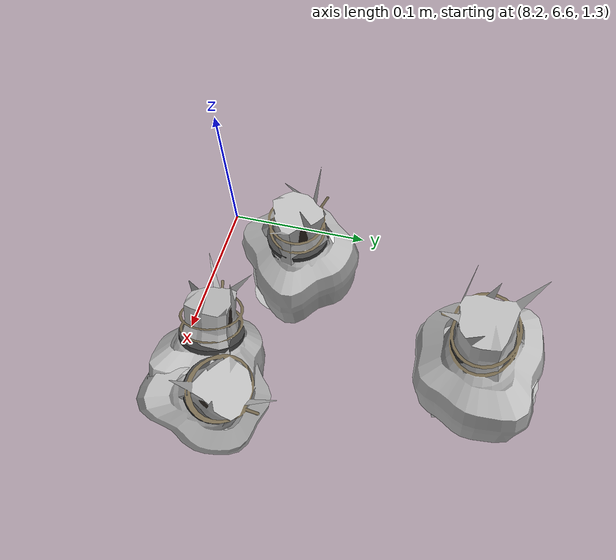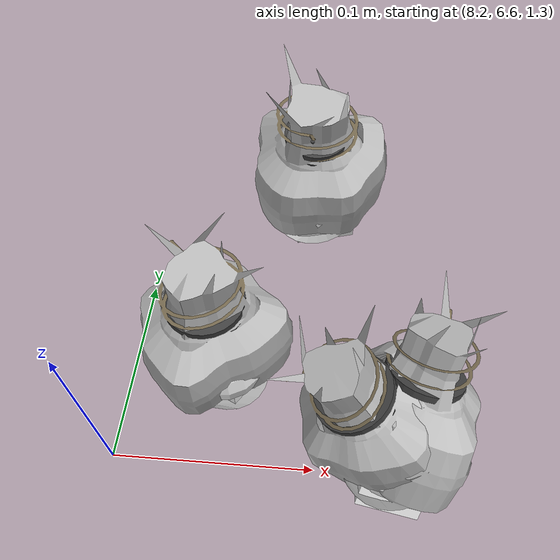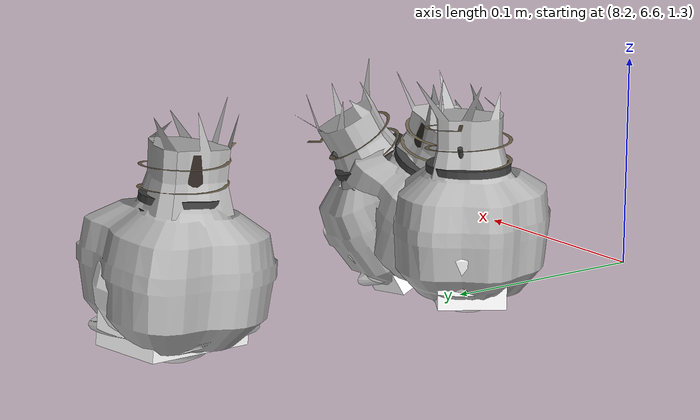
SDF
<sdf version="1.11">
 <world name="peach_orchard">
  <model name="ground">
   <static>true</static>
   <link name="link">
    <visual name="soil">
     <geometry><plane><normal>0 0 1</normal><size>32 22</size></plane></geometry>
     <material>
      <ambient>1 1 1 1</ambient>
      <diffuse>1 1 1 1</diffuse>
      <specular>0.1 0.1 0.1 1</specular>
      <pbr>
       <metal>
        <albedo_map>textures/soil_albedo.png</albedo_map>
        <normal_map type="tangent">textures/soil_normal.png</normal_map>
        <roughness>0.95</roughness>
        <metalness>0</metalness>
       </metal>
      </pbr>
     </material>
    </visual>
    <collision name="c_soil">
     <geometry><plane><normal>0 0 1</normal><size>32 22</size></plane></geometry>
    </collision>
   </link>
  </model>
  <model name="peach_tree_r4_t6_01">
   <pose>8.34464 6.62677 1.27423 0 0.434602 3.12571</pose>
   <static>true</static>
   <link name="bag">
    <visual name="bag_mesh">
     <pose>0 0 0.0449156 0 0 0</pose>
     <geometry>
      <mesh><uri>model://peach_sim/meshes/bagged_peach.glb</uri><scale>0.943923 1.02547 1.02081</scale></mesh>
     </geometry>
    </visual>
    <visual name="body">
     <pose>0 0 0.0269156 0 0 0</pose>
     <geometry><ellipsoid><radii>0.0353971 0.0266623 0.0290688</radii></ellipsoid></geometry>
     <material>
      <ambient>1 1 1 1</ambient>
      <diffuse>1 1 1 1</diffuse>
      <specular>0.1 0.1 0.1 1</specular>
      <pbr>
       <metal>
        <albedo_map>textures/paper_bag_albedo.png</albedo_map>
        <normal_map type="tangent">textures/paper_bag_normal.png</normal_map>
        <roughness>0.72</roughness>
        <metalness>0</metalness>
       </metal>
      </pbr>
     </material>
    </visual>
    <visual name="bottom_fold">
     <pose>0 0 0.012 0 0 0.35</pose>
     <geometry><box><size>0.0548655 0.0306616 0.022</size></box></geometry>
     <material>
      <ambient>1 1 1 1</ambient>
      <diffuse>1 1 1 1</diffuse>
      <specular>0.1 0.1 0.1 1</specular>
      <pbr>
       <metal>
        <albedo_map>textures/paper_bag_albedo.png</albedo_map>
        <normal_map type="tangent">textures/paper_bag_normal.png</normal_map>
        <roughness>0.8</roughness>
        <metalness>0</metalness>
       </metal>
      </pbr>
     </material>
    </visual>
    <visual name="fruit">
     <pose>0 0 0.0210609 0 0 0</pose>
     <geometry><sphere><radius>0.0281434</radius></sphere></geometry>
     <material>
      <ambient>1 1 1 1</ambient>
      <diffuse>1 1 1 1</diffuse>
      <specular>0.1 0.1 0.1 1</specular>
      <pbr>
       <metal>
        <albedo_map>textures/fruit_skin_albedo.png</albedo_map>
        <normal_map type="tangent">textures/fruit_skin_normal.png</normal_map>
        <roughness>0.55</roughness>
        <metalness>0</metalness>
       </metal>
      </pbr>
     </material>
    </visual>
    <visual name="neck">
     <pose>0 0 0.0628311 0 0 0</pose>
     <geometry><cylinder><radius>0.013</radius><length>0.018</length></cylinder></geometry>
     <material>
      <ambient>1 1 1 1</ambient>
      <diffuse>1 1 1 1</diffuse>
      <specular>0.1 0.1 0.1 1</specular>
      <pbr>
       <metal>
        <albedo_map>textures/paper_bag_albedo.png</albedo_map>
        <normal_map type="tangent">textures/paper_bag_normal.png</normal_map>
        <roughness>0.75</roughness>
        <metalness>0</metalness>
       </metal>
      </pbr>
     </material>
    </visual>
    <visual name="gather">
     <pose>0 0 0.0438311 0 0 0</pose>
     <geometry><cylinder><radius>0.019</radius><length>0.02</length></cylinder></geometry>
     <material>
      <ambient>1 1 1 1</ambient>
      <diffuse>1 1 1 1</diffuse>
      <specular>0.1 0.1 0.1 1</specular>
      <pbr>
       <metal>
        <albedo_map>textures/paper_bag_albedo.png</albedo_map>
        <normal_map type="tangent">textures/paper_bag_normal.png</normal_map>
        <roughness>0.8</roughness>
        <metalness>0</metalness>
       </metal>
      </pbr>
     </material>
    </visual>
    <visual name="inner_paper">
     <pose>0 0 0.0678311 0 0 0</pose>
     <geometry><cylinder><radius>0.01</radius><length>0.008</length></cylinder></geometry>
     <material>
      <ambient>0.180392 0.14902 0.133333 1</ambient>
      <diffuse>0.180392 0.14902 0.133333 1</diffuse>
      <specular>0.1 0.1 0.1 1</specular>
     </material>
    </visual>
    <visual name="wire_0">
     <pose>0 0 0.0578311 0 0 0</pose>
     <geometry><cylinder><radius>0.0205</radius><length>0.0035</length></cylinder></geometry>
     <material>
      <ambient>0.25 0.25 0.25 1</ambient>
      <diffuse>0.25 0.25 0.25 1</diffuse>
      <specular>0.1 0.1 0.1 1</specular>
     </material>
    </visual>
    <visual name="wire_1">
     <pose>0 0 0.0648311 0 0 0</pose>
     <geometry><cylinder><radius>0.0205</radius><length>0.0035</length></cylinder></geometry>
     <material>
      <ambient>0.25 0.25 0.25 1</ambient>
      <diffuse>0.25 0.25 0.25 1</diffuse>
      <specular>0.1 0.1 0.1 1</specular>
     </material>
    </visual>
    <visual name="wire_tail">
     <pose>0.01 0 0.0658311 0 0.521618 0</pose>
     <geometry><cylinder><radius>0.0012</radius><length>0.026</length></cylinder></geometry>
     <material>
      <ambient>0.25 0.25 0.25 1</ambient>
      <diffuse>0.25 0.25 0.25 1</diffuse>
      <specular>0.1 0.1 0.1 1</specular>
     </material>
    </visual>
    <collision name="c_body">
     <pose>0 0 0.0269156 0 0 0</pose>
     <geometry><cylinder><radius>0.0353971</radius><length>0.0538311</length></cylinder></geometry>
    </collision>
   </link>
  </model>
  <model name="peach_tree_r4_t6_02">
   <pose>8.33831 6.61272 1.27 0 0.501686 1.13346</pose>
   <static>true</static>
   <link name="bag">
    <visual name="bag_mesh">
     <pose>0 0 0.0464203 0 0 0</pose>
     <geometry>
      <mesh><uri>model://peach_sim/meshes/bagged_peach.glb</uri><scale>0.992701 1.08637 1.05501</scale></mesh>
     </geometry>
    </visual>
    <visual name="body">
     <pose>0 0 0.0284203 0 0 0</pose>
     <geometry><ellipsoid><radii>0.0372263 0.0282457 0.0306939</radii></ellipsoid></geometry>
     <material>
      <ambient>1 1 1 1</ambient>
      <diffuse>1 1 1 1</diffuse>
      <specular>0.1 0.1 0.1 1</specular>
      <pbr>
       <metal>
        <albedo_map>textures/paper_bag_albedo.png</albedo_map>
        <normal_map type="tangent">textures/paper_bag_normal.png</normal_map>
        <roughness>0.72</roughness>
        <metalness>0</metalness>
       </metal>
      </pbr>
     </material>
    </visual>
    <visual name="bottom_fold">
     <pose>0 0 0.012 0 0 0.35</pose>
     <geometry><box><size>0.0577008 0.0324825 0.022</size></box></geometry>
     <material>
      <ambient>1 1 1 1</ambient>
      <diffuse>1 1 1 1</diffuse>
      <specular>0.1 0.1 0.1 1</specular>
      <pbr>
       <metal>
        <albedo_map>textures/paper_bag_albedo.png</albedo_map>
        <normal_map type="tangent">textures/paper_bag_normal.png</normal_map>
        <roughness>0.8</roughness>
        <metalness>0</metalness>
       </metal>
      </pbr>
     </material>
    </visual>
    <visual name="fruit">
     <pose>0 0 0.0205224 0 0 0</pose>
     <geometry><sphere><radius>0.0275833</radius></sphere></geometry>
     <material>
      <ambient>1 1 1 1</ambient>
      <diffuse>1 1 1 1</diffuse>
      <specular>0.1 0.1 0.1 1</specular>
      <pbr>
       <metal>
        <albedo_map>textures/fruit_skin_albedo.png</albedo_map>
        <normal_map type="tangent">textures/fruit_skin_normal.png</normal_map>
        <roughness>0.55</roughness>
        <metalness>0</metalness>
       </metal>
      </pbr>
     </material>
    </visual>
    <visual name="neck">
     <pose>0 0 0.0658405 0 0 0</pose>
     <geometry><cylinder><radius>0.013</radius><length>0.018</length></cylinder></geometry>
     <material>
      <ambient>1 1 1 1</ambient>
      <diffuse>1 1 1 1</diffuse>
      <specular>0.1 0.1 0.1 1</specular>
      <pbr>
       <metal>
        <albedo_map>textures/paper_bag_albedo.png</albedo_map>
        <normal_map type="tangent">textures/paper_bag_normal.png</normal_map>
        <roughness>0.75</roughness>
        <metalness>0</metalness>
       </metal>
      </pbr>
     </material>
    </visual>
    <visual name="gather">
     <pose>0 0 0.0468405 0 0 0</pose>
     <geometry><cylinder><radius>0.019</radius><length>0.02</length></cylinder></geometry>
     <material>
      <ambient>1 1 1 1</ambient>
      <diffuse>1 1 1 1</diffuse>
      <specular>0.1 0.1 0.1 1</specular>
      <pbr>
       <metal>
        <albedo_map>textures/paper_bag_albedo.png</albedo_map>
        <normal_map type="tangent">textures/paper_bag_normal.png</normal_map>
        <roughness>0.8</roughness>
        <metalness>0</metalness>
       </metal>
      </pbr>
     </material>
    </visual>
    <visual name="inner_paper">
     <pose>0 0 0.0708405 0 0 0</pose>
     <geometry><cylinder><radius>0.01</radius><length>0.008</length></cylinder></geometry>
     <material>
      <ambient>0.180392 0.14902 0.133333 1</ambient>
      <diffuse>0.180392 0.14902 0.133333 1</diffuse>
      <specular>0.1 0.1 0.1 1</specular>
     </material>
    </visual>
    <visual name="wire_0">
     <pose>0 0 0.0608405 0 0 0</pose>
     <geometry><cylinder><radius>0.0205</radius><length>0.0035</length></cylinder></geometry>
     <material>
      <ambient>0.25 0.25 0.25 1</ambient>
      <diffuse>0.25 0.25 0.25 1</diffuse>
      <specular>0.1 0.1 0.1 1</specular>
     </material>
    </visual>
    <visual name="wire_1">
     <pose>0 0 0.0678405 0 0 0</pose>
     <geometry><cylinder><radius>0.0205</radius><length>0.0035</length></cylinder></geometry>
     <material>
      <ambient>0.25 0.25 0.25 1</ambient>
      <diffuse>0.25 0.25 0.25 1</diffuse>
      <specular>0.1 0.1 0.1 1</specular>
     </material>
    </visual>
    <visual name="wire_tail">
     <pose>0.01 0 0.0688405 0 0.521618 0</pose>
     <geometry><cylinder><radius>0.0012</radius><length>0.026</length></cylinder></geometry>
     <material>
      <ambient>0.25 0.25 0.25 1</ambient>
      <diffuse>0.25 0.25 0.25 1</diffuse>
      <specular>0.1 0.1 0.1 1</specular>
     </material>
    </visual>
    <collision name="c_body">
     <pose>0 0 0.0284203 0 0 0</pose>
     <geometry><cylinder><radius>0.0372263</radius><length>0.0568405</length></cylinder></geometry>
    </collision>
   </link>
  </model>
  <model name="peach_tree_r4_t6_03">
   <pose>8.28946 6.80091 1.27 0 0.0886078 -1.68279</pose>
   <static>true</static>
   <link name="bag">
    <visual name="bag_mesh">
     <pose>0 0 0.0484192 0 0 -0</pose>
     <geometry>
      <mesh><uri>model://peach_sim/meshes/bagged_peach.glb</uri><scale>1.07134 1.28285 1.10044</scale></mesh>
     </geometry>
    </visual>
    <visual name="body">
     <pose>0 0 0.0304192 0 0 0</pose>
     <geometry><ellipsoid><radii>0.0401752 0.0333541 0.0328528</radii></ellipsoid></geometry>
     <material>
      <ambient>1 1 1 1</ambient>
      <diffuse>1 1 1 1</diffuse>
      <specular>0.1 0.1 0.1 1</specular>
      <pbr>
       <metal>
        <albedo_map>textures/paper_bag_albedo.png</albedo_map>
        <normal_map type="tangent">textures/paper_bag_normal.png</normal_map>
        <roughness>0.72</roughness>
        <metalness>0</metalness>
       </metal>
      </pbr>
     </material>
    </visual>
    <visual name="bottom_fold">
     <pose>0 0 0.012 0 0 0.35</pose>
     <geometry><box><size>0.0622716 0.0383572 0.022</size></box></geometry>
     <material>
      <ambient>1 1 1 1</ambient>
      <diffuse>1 1 1 1</diffuse>
      <specular>0.1 0.1 0.1 1</specular>
      <pbr>
       <metal>
        <albedo_map>textures/paper_bag_albedo.png</albedo_map>
        <normal_map type="tangent">textures/paper_bag_normal.png</normal_map>
        <roughness>0.8</roughness>
        <metalness>0</metalness>
       </metal>
      </pbr>
     </material>
    </visual>
    <visual name="fruit">
     <pose>0 0 0.0197147 0 0 0</pose>
     <geometry><sphere><radius>0.0267433</radius></sphere></geometry>
     <material>
      <ambient>1 1 1 1</ambient>
      <diffuse>1 1 1 1</diffuse>
      <specular>0.1 0.1 0.1 1</specular>
      <pbr>
       <metal>
        <albedo_map>textures/fruit_skin_albedo.png</albedo_map>
        <normal_map type="tangent">textures/fruit_skin_normal.png</normal_map>
        <roughness>0.55</roughness>
        <metalness>0</metalness>
       </metal>
      </pbr>
     </material>
    </visual>
    <visual name="neck">
     <pose>0 0 0.0698385 0 0 0</pose>
     <geometry><cylinder><radius>0.013</radius><length>0.018</length></cylinder></geometry>
     <material>
      <ambient>1 1 1 1</ambient>
      <diffuse>1 1 1 1</diffuse>
      <specular>0.1 0.1 0.1 1</specular>
      <pbr>
       <metal>
        <albedo_map>textures/paper_bag_albedo.png</albedo_map>
        <normal_map type="tangent">textures/paper_bag_normal.png</normal_map>
        <roughness>0.75</roughness>
        <metalness>0</metalness>
       </metal>
      </pbr>
     </material>
    </visual>
    <visual name="gather">
     <pose>0 0 0.0508385 0 0 0</pose>
     <geometry><cylinder><radius>0.019</radius><length>0.02</length></cylinder></geometry>
     <material>
      <ambient>1 1 1 1</ambient>
      <diffuse>1 1 1 1</diffuse>
      <specular>0.1 0.1 0.1 1</specular>
      <pbr>
       <metal>
        <albedo_map>textures/paper_bag_albedo.png</albedo_map>
        <normal_map type="tangent">textures/paper_bag_normal.png</normal_map>
        <roughness>0.8</roughness>
        <metalness>0</metalness>
       </metal>
      </pbr>
     </material>
    </visual>
    <visual name="inner_paper">
     <pose>0 0 0.0748385 0 0 0</pose>
     <geometry><cylinder><radius>0.01</radius><length>0.008</length></cylinder></geometry>
     <material>
      <ambient>0.180392 0.14902 0.133333 1</ambient>
      <diffuse>0.180392 0.14902 0.133333 1</diffuse>
      <specular>0.1 0.1 0.1 1</specular>
     </material>
    </visual>
    <visual name="wire_0">
     <pose>0 0 0.0648385 0 0 0</pose>
     <geometry><cylinder><radius>0.0205</radius><length>0.0035</length></cylinder></geometry>
     <material>
      <ambient>0.25 0.25 0.25 1</ambient>
      <diffuse>0.25 0.25 0.25 1</diffuse>
      <specular>0.1 0.1 0.1 1</specular>
     </material>
    </visual>
    <visual name="wire_1">
     <pose>0 0 0.0718385 0 0 0</pose>
     <geometry><cylinder><radius>0.0205</radius><length>0.0035</length></cylinder></geometry>
     <material>
      <ambient>0.25 0.25 0.25 1</ambient>
      <diffuse>0.25 0.25 0.25 1</diffuse>
      <specular>0.1 0.1 0.1 1</specular>
     </material>
    </visual>
    <visual name="wire_tail">
     <pose>0.01 0 0.0728385 0 0.521618 0</pose>
     <geometry><cylinder><radius>0.0012</radius><length>0.026</length></cylinder></geometry>
     <material>
      <ambient>0.25 0.25 0.25 1</ambient>
      <diffuse>0.25 0.25 0.25 1</diffuse>
      <specular>0.1 0.1 0.1 1</specular>
     </material>
    </visual>
    <collision name="c_body">
     <pose>0 0 0.0304192 0 0 0</pose>
     <geometry><cylinder><radius>0.0401752</radius><length>0.0608385</length></cylinder></geometry>
    </collision>
   </link>
  </model>
  <model name="peach_tree_r4_t6_07">
   <pose>8.24124 6.66371 1.28353 0 3.67329e-06 2.22758</pose>
   <static>true</static>
   <link name="bag">
    <visual name="bag_mesh">
     <pose>0 0 0.0447919 0 0 0</pose>
     <geometry>
      <mesh><uri>model://peach_sim/meshes/bagged_peach.glb</uri><scale>0.941199 1.0955 1.018</scale></mesh>
     </geometry>
    </visual>
    <visual name="body">
     <pose>0 0 0.0267919 0 0 0</pose>
     <geometry><ellipsoid><radii>0.035295 0.028483 0.0289353</radii></ellipsoid></geometry>
     <material>
      <ambient>1 1 1 1</ambient>
      <diffuse>1 1 1 1</diffuse>
      <specular>0.1 0.1 0.1 1</specular>
      <pbr>
       <metal>
        <albedo_map>textures/paper_bag_albedo.png</albedo_map>
        <normal_map type="tangent">textures/paper_bag_normal.png</normal_map>
        <roughness>0.72</roughness>
        <metalness>0</metalness>
       </metal>
      </pbr>
     </material>
    </visual>
    <visual name="bottom_fold">
     <pose>0 0 0.012 0 0 0.35</pose>
     <geometry><box><size>0.0547072 0.0327554 0.022</size></box></geometry>
     <material>
      <ambient>1 1 1 1</ambient>
      <diffuse>1 1 1 1</diffuse>
      <specular>0.1 0.1 0.1 1</specular>
      <pbr>
       <metal>
        <albedo_map>textures/paper_bag_albedo.png</albedo_map>
        <normal_map type="tangent">textures/paper_bag_normal.png</normal_map>
        <roughness>0.8</roughness>
        <metalness>0</metalness>
       </metal>
      </pbr>
     </material>
    </visual>
    <visual name="fruit">
     <pose>0 0 0.0202266 0 0 0</pose>
     <geometry><sphere><radius>0.0272756</radius></sphere></geometry>
     <material>
      <ambient>1 1 1 1</ambient>
      <diffuse>1 1 1 1</diffuse>
      <specular>0.1 0.1 0.1 1</specular>
      <pbr>
       <metal>
        <albedo_map>textures/fruit_skin_albedo.png</albedo_map>
        <normal_map type="tangent">textures/fruit_skin_normal.png</normal_map>
        <roughness>0.55</roughness>
        <metalness>0</metalness>
       </metal>
      </pbr>
     </material>
    </visual>
    <visual name="neck">
     <pose>0 0 0.0625839 0 0 0</pose>
     <geometry><cylinder><radius>0.013</radius><length>0.018</length></cylinder></geometry>
     <material>
      <ambient>1 1 1 1</ambient>
      <diffuse>1 1 1 1</diffuse>
      <specular>0.1 0.1 0.1 1</specular>
      <pbr>
       <metal>
        <albedo_map>textures/paper_bag_albedo.png</albedo_map>
        <normal_map type="tangent">textures/paper_bag_normal.png</normal_map>
        <roughness>0.75</roughness>
        <metalness>0</metalness>
       </metal>
      </pbr>
     </material>
    </visual>
    <visual name="gather">
     <pose>0 0 0.0435839 0 0 0</pose>
     <geometry><cylinder><radius>0.019</radius><length>0.02</length></cylinder></geometry>
     <material>
      <ambient>1 1 1 1</ambient>
      <diffuse>1 1 1 1</diffuse>
      <specular>0.1 0.1 0.1 1</specular>
      <pbr>
       <metal>
        <albedo_map>textures/paper_bag_albedo.png</albedo_map>
        <normal_map type="tangent">textures/paper_bag_normal.png</normal_map>
        <roughness>0.8</roughness>
        <metalness>0</metalness>
       </metal>
      </pbr>
     </material>
    </visual>
    <visual name="inner_paper">
     <pose>0 0 0.0675839 0 0 0</pose>
     <geometry><cylinder><radius>0.01</radius><length>0.008</length></cylinder></geometry>
     <material>
      <ambient>0.180392 0.14902 0.133333 1</ambient>
      <diffuse>0.180392 0.14902 0.133333 1</diffuse>
      <specular>0.1 0.1 0.1 1</specular>
     </material>
    </visual>
    <visual name="wire_0">
     <pose>0 0 0.0575839 0 0 0</pose>
     <geometry><cylinder><radius>0.0205</radius><length>0.0035</length></cylinder></geometry>
     <material>
      <ambient>0.25 0.25 0.25 1</ambient>
      <diffuse>0.25 0.25 0.25 1</diffuse>
      <specular>0.1 0.1 0.1 1</specular>
     </material>
    </visual>
    <visual name="wire_1">
     <pose>0 0 0.0645839 0 0 0</pose>
     <geometry><cylinder><radius>0.0205</radius><length>0.0035</length></cylinder></geometry>
     <material>
      <ambient>0.25 0.25 0.25 1</ambient>
      <diffuse>0.25 0.25 0.25 1</diffuse>
      <specular>0.1 0.1 0.1 1</specular>
     </material>
    </visual>
    <visual name="wire_tail">
     <pose>0.01 0 0.0655839 0 0.521618 0</pose>
     <geometry><cylinder><radius>0.0012</radius><length>0.026</length></cylinder></geometry>
     <material>
      <ambient>0.25 0.25 0.25 1</ambient>
      <diffuse>0.25 0.25 0.25 1</diffuse>
      <specular>0.1 0.1 0.1 1</specular>
     </material>
    </visual>
    <collision name="c_body">
     <pose>0 0 0.0267919 0 0 0</pose>
     <geometry><cylinder><radius>0.035295</radius><length>0.0535839</length></cylinder></geometry>
    </collision>
   </link>
  </model>
 </world>
</sdf>
